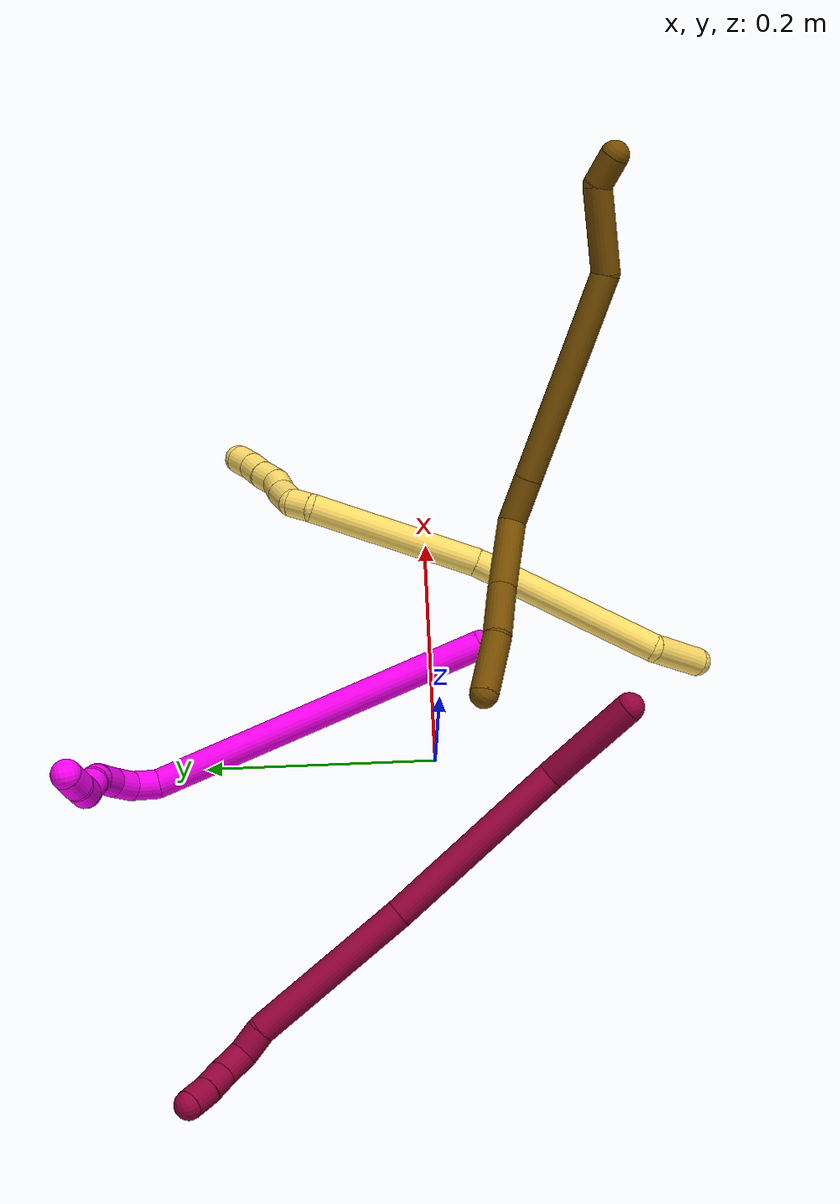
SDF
<sdf version="1.7">
 <world name="default">
  <model name="5">
   <static>0</static>
   <link name="5">
    <collision name="collision-cylinder-e_1_1_4">
     <pose>-0.005964 0.023579 0.009303 -1.19502 -0.2311 0.157636</pose>
     <geometry><cylinder><radius>0.0125</radius><length>0.05208</length></cylinder></geometry>
     <surface>
      <friction><ode><mu>1.16</mu><mu2>1.16</mu2><slip1>0</slip1><slip2>0</slip2></ode></friction>
      <contact><ode><kp>1e+06</kp><kd>1</kd><max_vel>0</max_vel><min_depth>0.001</min_depth></ode></contact>
     </surface>
    </collision>
    <visual name="visual-cylinder-e_1_1_4">
     <pose>-0.005964 0.023579 0.009303 -1.19502 -0.2311 0.157636</pose>
     <geometry><cylinder><radius>0.0125</radius><length>0.05208</length></cylinder></geometry>
     <material><ambient>1 0.858824 0.4 1</ambient></material>
    </visual>
    <collision name="collision-cylinder-e_2_4_5">
     <pose>0.020389 0.113975 0.060931 -1.00614 0.387894 -0.215337</pose>
     <geometry><cylinder><radius>0.0125</radius><length>0.170884</length></cylinder></geometry>
     <surface>
      <friction><ode><mu>1.16</mu><mu2>1.16</mu2><slip1>0</slip1><slip2>0</slip2></ode></friction>
      <contact><ode><kp>1e+06</kp><kd>1</kd><max_vel>0</max_vel><min_depth>0.001</min_depth></ode></contact>
     </surface>
    </collision>
    <visual name="visual-cylinder-e_2_4_5">
     <pose>0.020389 0.113975 0.060931 -1.00614 0.387894 -0.215337</pose>
     <geometry><cylinder><radius>0.0125</radius><length>0.170884</length></cylinder></geometry>
     <material><ambient>1 0.858824 0.4 1</ambient></material>
    </visual>
    <collision name="collision-cylinder-e_3_5_6">
     <pose>0.072057 0.247479 0.132364 -1.15925 0.259922 -0.170703</pose>
     <geometry><cylinder><radius>0.0125</radius><length>0.150585</length></cylinder></geometry>
     <surface>
      <friction><ode><mu>1.16</mu><mu2>1.16</mu2><slip1>0</slip1><slip2>0</slip2></ode></friction>
      <contact><ode><kp>1e+06</kp><kd>1</kd><max_vel>0</max_vel><min_depth>0.001</min_depth></ode></contact>
     </surface>
    </collision>
    <visual name="visual-cylinder-e_3_5_6">
     <pose>0.072057 0.247479 0.132364 -1.15925 0.259922 -0.170703</pose>
     <geometry><cylinder><radius>0.0125</radius><length>0.150585</length></cylinder></geometry>
     <material><ambient>1 0.858824 0.4 1</ambient></material>
    </visual>
    <collision name="collision-cylinder-e_4_6_7">
     <pose>0.098723 0.320554 0.164135 -1.17559 0.813147 -0.558817</pose>
     <geometry><cylinder><radius>0.0125</radius><length>0.020139</length></cylinder></geometry>
     <surface>
      <friction><ode><mu>1.16</mu><mu2>1.16</mu2><slip1>0</slip1><slip2>0</slip2></ode></friction>
      <contact><ode><kp>1e+06</kp><kd>1</kd><max_vel>0</max_vel><min_depth>0.001</min_depth></ode></contact>
     </surface>
    </collision>
    <visual name="visual-cylinder-e_4_6_7">
     <pose>0.098723 0.320554 0.164135 -1.17559 0.813147 -0.558817</pose>
     <geometry><cylinder><radius>0.0125</radius><length>0.020139</length></cylinder></geometry>
     <material><ambient>1 0.858824 0.4 1</ambient></material>
    </visual>
    <collision name="collision-cylinder-e_5_7_8">
     <pose>0.11802 0.32747 0.170783 -0.132 1.24721 -0.095023</pose>
     <geometry><cylinder><radius>0.0125</radius><length>0.025277</length></cylinder></geometry>
     <surface>
      <friction><ode><mu>1.16</mu><mu2>1.16</mu2><slip1>0</slip1><slip2>0</slip2></ode></friction>
      <contact><ode><kp>1e+06</kp><kd>1</kd><max_vel>0</max_vel><min_depth>0.001</min_depth></ode></contact>
     </surface>
    </collision>
    <visual name="visual-cylinder-e_5_7_8">
     <pose>0.11802 0.32747 0.170783 -0.132 1.24721 -0.095023</pose>
     <geometry><cylinder><radius>0.0125</radius><length>0.025277</length></cylinder></geometry>
     <material><ambient>1 0.858824 0.4 1</ambient></material>
    </visual>
    <collision name="collision-cylinder-e_6_8_9">
     <pose>0.139399 0.327428 0.179264 0.12614 1.12128 0.079259</pose>
     <geometry><cylinder><radius>0.0125</radius><length>0.020866</length></cylinder></geometry>
     <surface>
      <friction><ode><mu>1.16</mu><mu2>1.16</mu2><slip1>0</slip1><slip2>0</slip2></ode></friction>
      <contact><ode><kp>1e+06</kp><kd>1</kd><max_vel>0</max_vel><min_depth>0.001</min_depth></ode></contact>
     </surface>
    </collision>
    <visual name="visual-cylinder-e_6_8_9">
     <pose>0.139399 0.327428 0.179264 0.12614 1.12128 0.079259</pose>
     <geometry><cylinder><radius>0.0125</radius><length>0.020866</length></cylinder></geometry>
     <material><ambient>1 0.858824 0.4 1</ambient></material>
    </visual>
    <collision name="collision-cylinder-e_7_9_10">
     <pose>0.157619 0.330168 0.187325 -0.748646 1.06701 -0.455987</pose>
     <geometry><cylinder><radius>0.0125</radius><length>0.02015</length></cylinder></geometry>
     <surface>
      <friction><ode><mu>1.16</mu><mu2>1.16</mu2><slip1>0</slip1><slip2>0</slip2></ode></friction>
      <contact><ode><kp>1e+06</kp><kd>1</kd><max_vel>0</max_vel><min_depth>0.001</min_depth></ode></contact>
     </surface>
    </collision>
    <visual name="visual-cylinder-e_7_9_10">
     <pose>0.157619 0.330168 0.187325 -0.748646 1.06701 -0.455987</pose>
     <geometry><cylinder><radius>0.0125</radius><length>0.02015</length></cylinder></geometry>
     <material><ambient>1 0.858824 0.4 1</ambient></material>
    </visual>
    <collision name="collision-cylinder-e_8_10_11">
     <pose>0.175419 0.335471 0.194818 -0.469245 1.11447 -0.295702</pose>
     <geometry><cylinder><radius>0.0125</radius><length>0.02</length></cylinder></geometry>
     <surface>
      <friction><ode><mu>1.16</mu><mu2>1.16</mu2><slip1>0</slip1><slip2>0</slip2></ode></friction>
      <contact><ode><kp>1e+06</kp><kd>1</kd><max_vel>0</max_vel><min_depth>0.001</min_depth></ode></contact>
     </surface>
    </collision>
    <visual name="visual-cylinder-e_8_10_11">
     <pose>0.175419 0.335471 0.194818 -0.469245 1.11447 -0.295702</pose>
     <geometry><cylinder><radius>0.0125</radius><length>0.02</length></cylinder></geometry>
     <material><ambient>1 0.858824 0.4 1</ambient></material>
    </visual>
    <collision name="collision-cylinder-e_9_11_2">
     <pose>0.193292 0.340601 0.202095 -0.75318 1.09475 -0.47305</pose>
     <geometry><cylinder><radius>0.0125</radius><length>0.020019</length></cylinder></geometry>
     <surface>
      <friction><ode><mu>1.16</mu><mu2>1.16</mu2><slip1>0</slip1><slip2>0</slip2></ode></friction>
      <contact><ode><kp>1e+06</kp><kd>1</kd><max_vel>0</max_vel><min_depth>0.001</min_depth></ode></contact>
     </surface>
    </collision>
    <visual name="visual-cylinder-e_9_11_2">
     <pose>0.193292 0.340601 0.202095 -0.75318 1.09475 -0.47305</pose>
     <geometry><cylinder><radius>0.0125</radius><length>0.020019</length></cylinder></geometry>
     <material><ambient>1 0.858824 0.4 1</ambient></material>
    </visual>
    <collision name="collision-sphere-2">
     <pose>0.202189 0.343739 0.205441 0 -0 0</pose>
     <geometry><sphere><radius>0.0125</radius></sphere></geometry>
     <surface>
      <friction><ode><mu>1.16</mu><mu2>1.16</mu2><slip1>0</slip1><slip2>0</slip2></ode></friction>
      <contact><ode><kp>1e+06</kp><kd>1</kd><max_vel>0</max_vel><min_depth>0.001</min_depth></ode></contact>
     </surface>
    </collision>
    <visual name="visual-sphere-2">
     <pose>0.202189 0.343739 0.205441 0 -0 0</pose>
     <geometry><sphere><radius>0.0125</radius></sphere></geometry>
     <material><ambient>1 0.858824 0.4 1</ambient></material>
    </visual>
    <collision name="collision-sphere-11">
     <pose>0.184396 0.337464 0.198748 0 -0 0</pose>
     <geometry><sphere><radius>0.0125</radius></sphere></geometry>
     <surface>
      <friction><ode><mu>1.16</mu><mu2>1.16</mu2><slip1>0</slip1><slip2>0</slip2></ode></friction>
      <contact><ode><kp>1e+06</kp><kd>1</kd><max_vel>0</max_vel><min_depth>0.001</min_depth></ode></contact>
     </surface>
    </collision>
    <visual name="visual-sphere-11">
     <pose>0.184396 0.337464 0.198748 0 -0 0</pose>
     <geometry><sphere><radius>0.0125</radius></sphere></geometry>
     <material><ambient>1 0.858824 0.4 1</ambient></material>
    </visual>
    <collision name="collision-sphere-10">
     <pose>0.166442 0.333479 0.190888 0 -0 0</pose>
     <geometry><sphere><radius>0.0125</radius></sphere></geometry>
     <surface>
      <friction><ode><mu>1.16</mu><mu2>1.16</mu2><slip1>0</slip1><slip2>0</slip2></ode></friction>
      <contact><ode><kp>1e+06</kp><kd>1</kd><max_vel>0</max_vel><min_depth>0.001</min_depth></ode></contact>
     </surface>
    </collision>
    <visual name="visual-sphere-10">
     <pose>0.166442 0.333479 0.190888 0 -0 0</pose>
     <geometry><sphere><radius>0.0125</radius></sphere></geometry>
     <material><ambient>1 0.858824 0.4 1</ambient></material>
    </visual>
    <collision name="collision-sphere-9">
     <pose>0.148796 0.326858 0.183762 0 -0 0</pose>
     <geometry><sphere><radius>0.0125</radius></sphere></geometry>
     <surface>
      <friction><ode><mu>1.16</mu><mu2>1.16</mu2><slip1>0</slip1><slip2>0</slip2></ode></friction>
      <contact><ode><kp>1e+06</kp><kd>1</kd><max_vel>0</max_vel><min_depth>0.001</min_depth></ode></contact>
     </surface>
    </collision>
    <visual name="visual-sphere-9">
     <pose>0.148796 0.326858 0.183762 0 -0 0</pose>
     <geometry><sphere><radius>0.0125</radius></sphere></geometry>
     <material><ambient>1 0.858824 0.4 1</ambient></material>
    </visual>
    <collision name="collision-sphere-4">
     <pose>-0.011929 0.047158 0.018605 0 -0 0</pose>
     <geometry><sphere><radius>0.0125</radius></sphere></geometry>
     <surface>
      <friction><ode><mu>1.16</mu><mu2>1.16</mu2><slip1>0</slip1><slip2>0</slip2></ode></friction>
      <contact><ode><kp>1e+06</kp><kd>1</kd><max_vel>0</max_vel><min_depth>0.001</min_depth></ode></contact>
     </surface>
    </collision>
    <visual name="visual-sphere-4">
     <pose>-0.011929 0.047158 0.018605 0 -0 0</pose>
     <geometry><sphere><radius>0.0125</radius></sphere></geometry>
     <material><ambient>1 0.858824 0.4 1</ambient></material>
    </visual>
    <collision name="collision-sphere-1">
     <geometry><sphere><radius>0.0125</radius></sphere></geometry>
     <surface>
      <friction><ode><mu>1.16</mu><mu2>1.16</mu2><slip1>0</slip1><slip2>0</slip2></ode></friction>
      <contact><ode><kp>1e+06</kp><kd>1</kd><max_vel>0</max_vel><min_depth>0.001</min_depth></ode></contact>
     </surface>
    </collision>
    <visual name="visual-sphere-1">
     <geometry><sphere><radius>0.0125</radius></sphere></geometry>
     <material><ambient>1 0.858824 0.4 1</ambient></material>
    </visual>
    <collision name="collision-sphere-8">
     <pose>0.130003 0.327998 0.174767 0 -0 0</pose>
     <geometry><sphere><radius>0.0125</radius></sphere></geometry>
     <surface>
      <friction><ode><mu>1.16</mu><mu2>1.16</mu2><slip1>0</slip1><slip2>0</slip2></ode></friction>
      <contact><ode><kp>1e+06</kp><kd>1</kd><max_vel>0</max_vel><min_depth>0.001</min_depth></ode></contact>
     </surface>
    </collision>
    <visual name="visual-sphere-8">
     <pose>0.130003 0.327998 0.174767 0 -0 0</pose>
     <geometry><sphere><radius>0.0125</radius></sphere></geometry>
     <material><ambient>1 0.858824 0.4 1</ambient></material>
    </visual>
    <collision name="collision-sphere-5">
     <pose>0.052706 0.180791 0.103257 0 -0 0</pose>
     <geometry><sphere><radius>0.0125</radius></sphere></geometry>
     <surface>
      <friction><ode><mu>1.16</mu><mu2>1.16</mu2><slip1>0</slip1><slip2>0</slip2></ode></friction>
      <contact><ode><kp>1e+06</kp><kd>1</kd><max_vel>0</max_vel><min_depth>0.001</min_depth></ode></contact>
     </surface>
    </collision>
    <visual name="visual-sphere-5">
     <pose>0.052706 0.180791 0.103257 0 -0 0</pose>
     <geometry><sphere><radius>0.0125</radius></sphere></geometry>
     <material><ambient>1 0.858824 0.4 1</ambient></material>
    </visual>
    <collision name="collision-sphere-6">
     <pose>0.091408 0.314167 0.161471 0 -0 0</pose>
     <geometry><sphere><radius>0.0125</radius></sphere></geometry>
     <surface>
      <friction><ode><mu>1.16</mu><mu2>1.16</mu2><slip1>0</slip1><slip2>0</slip2></ode></friction>
      <contact><ode><kp>1e+06</kp><kd>1</kd><max_vel>0</max_vel><min_depth>0.001</min_depth></ode></contact>
     </surface>
    </collision>
    <visual name="visual-sphere-6">
     <pose>0.091408 0.314167 0.161471 0 -0 0</pose>
     <geometry><sphere><radius>0.0125</radius></sphere></geometry>
     <material><ambient>1 0.858824 0.4 1</ambient></material>
    </visual>
    <collision name="collision-sphere-7">
     <pose>0.106038 0.326941 0.1668 0 -0 0</pose>
     <geometry><sphere><radius>0.0125</radius></sphere></geometry>
     <surface>
      <friction><ode><mu>1.16</mu><mu2>1.16</mu2><slip1>0</slip1><slip2>0</slip2></ode></friction>
      <contact><ode><kp>1e+06</kp><kd>1</kd><max_vel>0</max_vel><min_depth>0.001</min_depth></ode></contact>
     </surface>
    </collision>
    <visual name="visual-sphere-7">
     <pose>0.106038 0.326941 0.1668 0 -0 0</pose>
     <geometry><sphere><radius>0.0125</radius></sphere></geometry>
     <material><ambient>1 0.858824 0.4 1</ambient></material>
    </visual>
    <inertial>
     <pose>0.064916 0.199434 0.107816 0 -0 0</pose>
     <mass>0.5</mass>
     <inertia>
      <ixx>0.000561</ixx>
      <ixy>0</ixy>
      <ixz>0</ixz>
      <iyy>0.000287</iyy>
      <iyz>0</iyz>
      <izz>-0.000826</izz>
     </inertia>
    </inertial>
   </link>
   <pose>0.076941 -0.233445 0.012465 0.609426 1.03923 0.719635</pose>
  </model>
  <model name="8">
   <static>0</static>
   <link name="8">
    <collision name="collision-cylinder-e_1_1_4">
     <pose>0.005446 0.032012 0.030782 -0.804973 0.122024 -0.052002</pose>
     <geometry><cylinder><radius>0.0125</radius><length>0.089486</length></cylinder></geometry>
     <surface>
      <friction><ode><mu>1.16</mu><mu2>1.16</mu2><slip1>0</slip1><slip2>0</slip2></ode></friction>
      <contact><ode><kp>1e+06</kp><kd>1</kd><max_vel>0</max_vel><min_depth>0.001</min_depth></ode></contact>
     </surface>
    </collision>
    <visual name="visual-cylinder-e_1_1_4">
     <pose>0.005446 0.032012 0.030782 -0.804973 0.122024 -0.052002</pose>
     <geometry><cylinder><radius>0.0125</radius><length>0.089486</length></cylinder></geometry>
     <material><ambient>0.584314 0 0.227451 1</ambient></material>
    </visual>
    <collision name="collision-cylinder-e_2_4_5">
     <pose>0.001998 0.103329 0.135862 -0.486596 -0.105426 0.026191</pose>
     <geometry><cylinder><radius>0.0125</radius><length>0.169047</length></cylinder></geometry>
     <surface>
      <friction><ode><mu>1.16</mu><mu2>1.16</mu2><slip1>0</slip1><slip2>0</slip2></ode></friction>
      <contact><ode><kp>1e+06</kp><kd>1</kd><max_vel>0</max_vel><min_depth>0.001</min_depth></ode></contact>
     </surface>
    </collision>
    <visual name="visual-cylinder-e_2_4_5">
     <pose>0.001998 0.103329 0.135862 -0.486596 -0.105426 0.026191</pose>
     <geometry><cylinder><radius>0.0125</radius><length>0.169047</length></cylinder></geometry>
     <material><ambient>0.584314 0 0.227451 1</ambient></material>
    </visual>
    <collision name="collision-cylinder-e_3_5_6">
     <pose>-0.012695 0.17513 0.276071 -0.458053 -0.07874 0.018365</pose>
     <geometry><cylinder><radius>0.0125</radius><length>0.147429</length></cylinder></geometry>
     <surface>
      <friction><ode><mu>1.16</mu><mu2>1.16</mu2><slip1>0</slip1><slip2>0</slip2></ode></friction>
      <contact><ode><kp>1e+06</kp><kd>1</kd><max_vel>0</max_vel><min_depth>0.001</min_depth></ode></contact>
     </surface>
    </collision>
    <visual name="visual-cylinder-e_3_5_6">
     <pose>-0.012695 0.17513 0.276071 -0.458053 -0.07874 0.018365</pose>
     <geometry><cylinder><radius>0.0125</radius><length>0.147429</length></cylinder></geometry>
     <material><ambient>0.584314 0 0.227451 1</ambient></material>
    </visual>
    <collision name="collision-cylinder-e_4_6_7">
     <pose>-0.021505 0.21457 0.351719 -0.619565 -0.246727 0.079336</pose>
     <geometry><cylinder><radius>0.0125</radius><length>0.024667</length></cylinder></geometry>
     <surface>
      <friction><ode><mu>1.16</mu><mu2>1.16</mu2><slip1>0</slip1><slip2>0</slip2></ode></friction>
      <contact><ode><kp>1e+06</kp><kd>1</kd><max_vel>0</max_vel><min_depth>0.001</min_depth></ode></contact>
     </surface>
    </collision>
    <visual name="visual-cylinder-e_4_6_7">
     <pose>-0.021505 0.21457 0.351719 -0.619565 -0.246727 0.079336</pose>
     <geometry><cylinder><radius>0.0125</radius><length>0.024667</length></cylinder></geometry>
     <material><ambient>0.584314 0 0.227451 1</ambient></material>
    </visual>
    <collision name="collision-cylinder-e_5_7_8">
     <pose>-0.030609 0.219581 0.373666 0.157077 -0.457864 -0.036673</pose>
     <geometry><cylinder><radius>0.0125</radius><length>0.027564</length></cylinder></geometry>
     <surface>
      <friction><ode><mu>1.16</mu><mu2>1.16</mu2><slip1>0</slip1><slip2>0</slip2></ode></friction>
      <contact><ode><kp>1e+06</kp><kd>1</kd><max_vel>0</max_vel><min_depth>0.001</min_depth></ode></contact>
     </surface>
    </collision>
    <visual name="visual-cylinder-e_5_7_8">
     <pose>-0.030609 0.219581 0.373666 0.157077 -0.457864 -0.036673</pose>
     <geometry><cylinder><radius>0.0125</radius><length>0.027564</length></cylinder></geometry>
     <material><ambient>0.584314 0 0.227451 1</ambient></material>
    </visual>
    <collision name="collision-cylinder-e_6_8_9">
     <pose>-0.041909 0.215799 0.394481 0.211577 -0.534228 -0.058099</pose>
     <geometry><cylinder><radius>0.0125</radius><length>0.020454</length></cylinder></geometry>
     <surface>
      <friction><ode><mu>1.16</mu><mu2>1.16</mu2><slip1>0</slip1><slip2>0</slip2></ode></friction>
      <contact><ode><kp>1e+06</kp><kd>1</kd><max_vel>0</max_vel><min_depth>0.001</min_depth></ode></contact>
     </surface>
    </collision>
    <visual name="visual-cylinder-e_6_8_9">
     <pose>-0.041909 0.215799 0.394481 0.211577 -0.534228 -0.058099</pose>
     <geometry><cylinder><radius>0.0125</radius><length>0.020454</length></cylinder></geometry>
     <material><ambient>0.584314 0 0.227451 1</ambient></material>
    </visual>
    <collision name="collision-cylinder-e_7_9_2">
     <pose>-0.051325 0.211679 0.412633 0.233645 -0.405236 -0.048209</pose>
     <geometry><cylinder><radius>0.0125</radius><length>0.021354</length></cylinder></geometry>
     <surface>
      <friction><ode><mu>1.16</mu><mu2>1.16</mu2><slip1>0</slip1><slip2>0</slip2></ode></friction>
      <contact><ode><kp>1e+06</kp><kd>1</kd><max_vel>0</max_vel><min_depth>0.001</min_depth></ode></contact>
     </surface>
    </collision>
    <visual name="visual-cylinder-e_7_9_2">
     <pose>-0.051325 0.211679 0.412633 0.233645 -0.405236 -0.048209</pose>
     <geometry><cylinder><radius>0.0125</radius><length>0.021354</length></cylinder></geometry>
     <material><ambient>0.584314 0 0.227451 1</ambient></material>
    </visual>
    <collision name="collision-sphere-2">
     <pose>-0.055534 0.209407 0.422178 0 -0 0</pose>
     <geometry><sphere><radius>0.0125</radius></sphere></geometry>
     <surface>
      <friction><ode><mu>1.16</mu><mu2>1.16</mu2><slip1>0</slip1><slip2>0</slip2></ode></friction>
      <contact><ode><kp>1e+06</kp><kd>1</kd><max_vel>0</max_vel><min_depth>0.001</min_depth></ode></contact>
     </surface>
    </collision>
    <visual name="visual-sphere-2">
     <pose>-0.055534 0.209407 0.422178 0 -0 0</pose>
     <geometry><sphere><radius>0.0125</radius></sphere></geometry>
     <material><ambient>0.584314 0 0.227451 1</ambient></material>
    </visual>
    <collision name="collision-sphere-9">
     <pose>-0.047116 0.213951 0.403087 0 -0 0</pose>
     <geometry><sphere><radius>0.0125</radius></sphere></geometry>
     <surface>
      <friction><ode><mu>1.16</mu><mu2>1.16</mu2><slip1>0</slip1><slip2>0</slip2></ode></friction>
      <contact><ode><kp>1e+06</kp><kd>1</kd><max_vel>0</max_vel><min_depth>0.001</min_depth></ode></contact>
     </surface>
    </collision>
    <visual name="visual-sphere-9">
     <pose>-0.047116 0.213951 0.403087 0 -0 0</pose>
     <geometry><sphere><radius>0.0125</radius></sphere></geometry>
     <material><ambient>0.584314 0 0.227451 1</ambient></material>
    </visual>
    <collision name="collision-sphere-4">
     <pose>0.010892 0.064023 0.061565 0 -0 0</pose>
     <geometry><sphere><radius>0.0125</radius></sphere></geometry>
     <surface>
      <friction><ode><mu>1.16</mu><mu2>1.16</mu2><slip1>0</slip1><slip2>0</slip2></ode></friction>
      <contact><ode><kp>1e+06</kp><kd>1</kd><max_vel>0</max_vel><min_depth>0.001</min_depth></ode></contact>
     </surface>
    </collision>
    <visual name="visual-sphere-4">
     <pose>0.010892 0.064023 0.061565 0 -0 0</pose>
     <geometry><sphere><radius>0.0125</radius></sphere></geometry>
     <material><ambient>0.584314 0 0.227451 1</ambient></material>
    </visual>
    <collision name="collision-sphere-1">
     <geometry><sphere><radius>0.0125</radius></sphere></geometry>
     <surface>
      <friction><ode><mu>1.16</mu><mu2>1.16</mu2><slip1>0</slip1><slip2>0</slip2></ode></friction>
      <contact><ode><kp>1e+06</kp><kd>1</kd><max_vel>0</max_vel><min_depth>0.001</min_depth></ode></contact>
     </surface>
    </collision>
    <visual name="visual-sphere-1">
     <geometry><sphere><radius>0.0125</radius></sphere></geometry>
     <material><ambient>0.584314 0 0.227451 1</ambient></material>
    </visual>
    <collision name="collision-sphere-8">
     <pose>-0.036701 0.217647 0.385876 0 -0 0</pose>
     <geometry><sphere><radius>0.0125</radius></sphere></geometry>
     <surface>
      <friction><ode><mu>1.16</mu><mu2>1.16</mu2><slip1>0</slip1><slip2>0</slip2></ode></friction>
      <contact><ode><kp>1e+06</kp><kd>1</kd><max_vel>0</max_vel><min_depth>0.001</min_depth></ode></contact>
     </surface>
    </collision>
    <visual name="visual-sphere-8">
     <pose>-0.036701 0.217647 0.385876 0 -0 0</pose>
     <geometry><sphere><radius>0.0125</radius></sphere></geometry>
     <material><ambient>0.584314 0 0.227451 1</ambient></material>
    </visual>
    <collision name="collision-sphere-5">
     <pose>-0.006896 0.142634 0.21016 0 -0 0</pose>
     <geometry><sphere><radius>0.0125</radius></sphere></geometry>
     <surface>
      <friction><ode><mu>1.16</mu><mu2>1.16</mu2><slip1>0</slip1><slip2>0</slip2></ode></friction>
      <contact><ode><kp>1e+06</kp><kd>1</kd><max_vel>0</max_vel><min_depth>0.001</min_depth></ode></contact>
     </surface>
    </collision>
    <visual name="visual-sphere-5">
     <pose>-0.006896 0.142634 0.21016 0 -0 0</pose>
     <geometry><sphere><radius>0.0125</radius></sphere></geometry>
     <material><ambient>0.584314 0 0.227451 1</ambient></material>
    </visual>
    <collision name="collision-sphere-6">
     <pose>-0.018493 0.207625 0.341982 0 -0 0</pose>
     <geometry><sphere><radius>0.0125</radius></sphere></geometry>
     <surface>
      <friction><ode><mu>1.16</mu><mu2>1.16</mu2><slip1>0</slip1><slip2>0</slip2></ode></friction>
      <contact><ode><kp>1e+06</kp><kd>1</kd><max_vel>0</max_vel><min_depth>0.001</min_depth></ode></contact>
     </surface>
    </collision>
    <visual name="visual-sphere-6">
     <pose>-0.018493 0.207625 0.341982 0 -0 0</pose>
     <geometry><sphere><radius>0.0125</radius></sphere></geometry>
     <material><ambient>0.584314 0 0.227451 1</ambient></material>
    </visual>
    <collision name="collision-sphere-7">
     <pose>-0.024517 0.221515 0.361456 0 -0 0</pose>
     <geometry><sphere><radius>0.0125</radius></sphere></geometry>
     <surface>
      <friction><ode><mu>1.16</mu><mu2>1.16</mu2><slip1>0</slip1><slip2>0</slip2></ode></friction>
      <contact><ode><kp>1e+06</kp><kd>1</kd><max_vel>0</max_vel><min_depth>0.001</min_depth></ode></contact>
     </surface>
    </collision>
    <visual name="visual-sphere-7">
     <pose>-0.024517 0.221515 0.361456 0 -0 0</pose>
     <geometry><sphere><radius>0.0125</radius></sphere></geometry>
     <material><ambient>0.584314 0 0.227451 1</ambient></material>
    </visual>
    <inertial>
     <pose>-0.008748 0.132861 0.204556 0 -0 0</pose>
     <mass>0.5</mass>
     <inertia>
      <ixx>0.000757</ixx>
      <ixy>0</ixy>
      <ixz>0</ixz>
      <iyy>0.000687</iyy>
      <iyz>0</iyz>
      <izz>-0.000263</izz>
     </inertia>
    </inertial>
   </link>
   <pose>0.001599 -0.155235 0.141302 -1.31818 0.395769 0.484826</pose>
  </model>
  <model name="10">
   <static>0</static>
   <link name="10">
    <collision name="collision-cylinder-e_1_1_4">
     <pose>0.010396 0.03396 0.145224 -0.229718 0.06959 -0.008032</pose>
     <geometry><cylinder><radius>0.0125</radius><length>0.299007</length></cylinder></geometry>
     <surface>
      <friction><ode><mu>1.16</mu><mu2>1.16</mu2><slip1>0</slip1><slip2>0</slip2></ode></friction>
      <contact><ode><kp>1e+06</kp><kd>1</kd><max_vel>0</max_vel><min_depth>0.001</min_depth></ode></contact>
     </surface>
    </collision>
    <visual name="visual-cylinder-e_1_1_4">
     <pose>0.010396 0.03396 0.145224 -0.229718 0.06959 -0.008032</pose>
     <geometry><cylinder><radius>0.0125</radius><length>0.299007</length></cylinder></geometry>
     <material><ambient>1 0 0.964706 1</ambient></material>
    </visual>
    <collision name="collision-cylinder-e_2_4_5">
     <pose>0.015013 0.06559 0.301041 0.216465 -0.489436 -0.054255</pose>
     <geometry><cylinder><radius>0.0125</radius><length>0.02458</length></cylinder></geometry>
     <surface>
      <friction><ode><mu>1.16</mu><mu2>1.16</mu2><slip1>0</slip1><slip2>0</slip2></ode></friction>
      <contact><ode><kp>1e+06</kp><kd>1</kd><max_vel>0</max_vel><min_depth>0.001</min_depth></ode></contact>
     </surface>
    </collision>
    <visual name="visual-cylinder-e_2_4_5">
     <pose>0.015013 0.06559 0.301041 0.216465 -0.489436 -0.054255</pose>
     <geometry><cylinder><radius>0.0125</radius><length>0.02458</length></cylinder></geometry>
     <material><ambient>1 0 0.964706 1</ambient></material>
    </visual>
    <collision name="collision-cylinder-e_3_5_6">
     <pose>0.001805 0.058851 0.318588 0.565233 -0.734224 -0.222414</pose>
     <geometry><cylinder><radius>0.0125</radius><length>0.022181</length></cylinder></geometry>
     <surface>
      <friction><ode><mu>1.16</mu><mu2>1.16</mu2><slip1>0</slip1><slip2>0</slip2></ode></friction>
      <contact><ode><kp>1e+06</kp><kd>1</kd><max_vel>0</max_vel><min_depth>0.001</min_depth></ode></contact>
     </surface>
    </collision>
    <visual name="visual-cylinder-e_3_5_6">
     <pose>0.001805 0.058851 0.318588 0.565233 -0.734224 -0.222414</pose>
     <geometry><cylinder><radius>0.0125</radius><length>0.022181</length></cylinder></geometry>
     <material><ambient>1 0 0.964706 1</ambient></material>
    </visual>
    <collision name="collision-cylinder-e_4_6_7">
     <pose>-0.016861 0.049775 0.33015 0.791437 -1.04238 -0.470807</pose>
     <geometry><cylinder><radius>0.0125</radius><length>0.026019</length></cylinder></geometry>
     <surface>
      <friction><ode><mu>1.16</mu><mu2>1.16</mu2><slip1>0</slip1><slip2>0</slip2></ode></friction>
      <contact><ode><kp>1e+06</kp><kd>1</kd><max_vel>0</max_vel><min_depth>0.001</min_depth></ode></contact>
     </surface>
    </collision>
    <visual name="visual-cylinder-e_4_6_7">
     <pose>-0.016861 0.049775 0.33015 0.791437 -1.04238 -0.470807</pose>
     <geometry><cylinder><radius>0.0125</radius><length>0.026019</length></cylinder></geometry>
     <material><ambient>1 0 0.964706 1</ambient></material>
    </visual>
    <collision name="collision-cylinder-e_5_7_8">
     <pose>-0.041134 0.046166 0.338165 -0.300834 -1.30385 0.230334</pose>
     <geometry><cylinder><radius>0.0125</radius><length>0.027033</length></cylinder></geometry>
     <surface>
      <friction><ode><mu>1.16</mu><mu2>1.16</mu2><slip1>0</slip1><slip2>0</slip2></ode></friction>
      <contact><ode><kp>1e+06</kp><kd>1</kd><max_vel>0</max_vel><min_depth>0.001</min_depth></ode></contact>
     </surface>
    </collision>
    <visual name="visual-cylinder-e_5_7_8">
     <pose>-0.041134 0.046166 0.338165 -0.300834 -1.30385 0.230334</pose>
     <geometry><cylinder><radius>0.0125</radius><length>0.027033</length></cylinder></geometry>
     <material><ambient>1 0 0.964706 1</ambient></material>
    </visual>
    <collision name="collision-cylinder-e_6_8_9">
     <pose>-0.063758 0.04459 0.3404 1.98915 -1.2788 -1.70527</pose>
     <geometry><cylinder><radius>0.0125</radius><length>0.02002</length></cylinder></geometry>
     <surface>
      <friction><ode><mu>1.16</mu><mu2>1.16</mu2><slip1>0</slip1><slip2>0</slip2></ode></friction>
      <contact><ode><kp>1e+06</kp><kd>1</kd><max_vel>0</max_vel><min_depth>0.001</min_depth></ode></contact>
     </surface>
    </collision>
    <visual name="visual-cylinder-e_6_8_9">
     <pose>-0.063758 0.04459 0.3404 1.98915 -1.2788 -1.70527</pose>
     <geometry><cylinder><radius>0.0125</radius><length>0.02002</length></cylinder></geometry>
     <material><ambient>1 0 0.964706 1</ambient></material>
    </visual>
    <collision name="collision-cylinder-e_7_9_10">
     <pose>-0.082843 0.039529 0.336608 2.3946 -1.211 -2.11132</pose>
     <geometry><cylinder><radius>0.0125</radius><length>0.020296</length></cylinder></geometry>
     <surface>
      <friction><ode><mu>1.16</mu><mu2>1.16</mu2><slip1>0</slip1><slip2>0</slip2></ode></friction>
      <contact><ode><kp>1e+06</kp><kd>1</kd><max_vel>0</max_vel><min_depth>0.001</min_depth></ode></contact>
     </surface>
    </collision>
    <visual name="visual-cylinder-e_7_9_10">
     <pose>-0.082843 0.039529 0.336608 2.3946 -1.211 -2.11132</pose>
     <geometry><cylinder><radius>0.0125</radius><length>0.020296</length></cylinder></geometry>
     <material><ambient>1 0 0.964706 1</ambient></material>
    </visual>
    <collision name="collision-cylinder-e_8_10_11">
     <pose>-0.101761 0.039415 0.336612 -0.722371 -1.21511 0.513695</pose>
     <geometry><cylinder><radius>0.0125</radius><length>0.020098</length></cylinder></geometry>
     <surface>
      <friction><ode><mu>1.16</mu><mu2>1.16</mu2><slip1>0</slip1><slip2>0</slip2></ode></friction>
      <contact><ode><kp>1e+06</kp><kd>1</kd><max_vel>0</max_vel><min_depth>0.001</min_depth></ode></contact>
     </surface>
    </collision>
    <visual name="visual-cylinder-e_8_10_11">
     <pose>-0.101761 0.039415 0.336612 -0.722371 -1.21511 0.513695</pose>
     <geometry><cylinder><radius>0.0125</radius><length>0.020098</length></cylinder></geometry>
     <material><ambient>1 0 0.964706 1</ambient></material>
    </visual>
    <collision name="collision-cylinder-e_9_11_12">
     <pose>-0.120126 0.036952 0.340849 1.24529 -1.05757 -0.794348</pose>
     <geometry><cylinder><radius>0.0125</radius><length>0.020535</length></cylinder></geometry>
     <surface>
      <friction><ode><mu>1.16</mu><mu2>1.16</mu2><slip1>0</slip1><slip2>0</slip2></ode></friction>
      <contact><ode><kp>1e+06</kp><kd>1</kd><max_vel>0</max_vel><min_depth>0.001</min_depth></ode></contact>
     </surface>
    </collision>
    <visual name="visual-cylinder-e_9_11_12">
     <pose>-0.120126 0.036952 0.340849 1.24529 -1.05757 -0.794348</pose>
     <geometry><cylinder><radius>0.0125</radius><length>0.020535</length></cylinder></geometry>
     <material><ambient>1 0 0.964706 1</ambient></material>
    </visual>
    <collision name="collision-cylinder-e_10_12_2">
     <pose>-0.136392 0.025808 0.345318 1.14914 -0.809319 -0.540998</pose>
     <geometry><cylinder><radius>0.0125</radius><length>0.020231</length></cylinder></geometry>
     <surface>
      <friction><ode><mu>1.16</mu><mu2>1.16</mu2><slip1>0</slip1><slip2>0</slip2></ode></friction>
      <contact><ode><kp>1e+06</kp><kd>1</kd><max_vel>0</max_vel><min_depth>0.001</min_depth></ode></contact>
     </surface>
    </collision>
    <visual name="visual-cylinder-e_10_12_2">
     <pose>-0.136392 0.025808 0.345318 1.14914 -0.809319 -0.540998</pose>
     <geometry><cylinder><radius>0.0125</radius><length>0.020231</length></cylinder></geometry>
     <material><ambient>1 0 0.964706 1</ambient></material>
    </visual>
    <collision name="collision-sphere-2">
     <pose>-0.143714 0.019439 0.348174 0 -0 0</pose>
     <geometry><sphere><radius>0.0125</radius></sphere></geometry>
     <surface>
      <friction><ode><mu>1.16</mu><mu2>1.16</mu2><slip1>0</slip1><slip2>0</slip2></ode></friction>
      <contact><ode><kp>1e+06</kp><kd>1</kd><max_vel>0</max_vel><min_depth>0.001</min_depth></ode></contact>
     </surface>
    </collision>
    <visual name="visual-sphere-2">
     <pose>-0.143714 0.019439 0.348174 0 -0 0</pose>
     <geometry><sphere><radius>0.0125</radius></sphere></geometry>
     <material><ambient>1 0 0.964706 1</ambient></material>
    </visual>
    <collision name="collision-sphere-12">
     <pose>-0.129071 0.032176 0.342461 0 -0 0</pose>
     <geometry><sphere><radius>0.0125</radius></sphere></geometry>
     <surface>
      <friction><ode><mu>1.16</mu><mu2>1.16</mu2><slip1>0</slip1><slip2>0</slip2></ode></friction>
      <contact><ode><kp>1e+06</kp><kd>1</kd><max_vel>0</max_vel><min_depth>0.001</min_depth></ode></contact>
     </surface>
    </collision>
    <visual name="visual-sphere-12">
     <pose>-0.129071 0.032176 0.342461 0 -0 0</pose>
     <geometry><sphere><radius>0.0125</radius></sphere></geometry>
     <material><ambient>1 0 0.964706 1</ambient></material>
    </visual>
    <collision name="collision-sphere-11">
     <pose>-0.111181 0.041729 0.339237 0 -0 0</pose>
     <geometry><sphere><radius>0.0125</radius></sphere></geometry>
     <surface>
      <friction><ode><mu>1.16</mu><mu2>1.16</mu2><slip1>0</slip1><slip2>0</slip2></ode></friction>
      <contact><ode><kp>1e+06</kp><kd>1</kd><max_vel>0</max_vel><min_depth>0.001</min_depth></ode></contact>
     </surface>
    </collision>
    <visual name="visual-sphere-11">
     <pose>-0.111181 0.041729 0.339237 0 -0 0</pose>
     <geometry><sphere><radius>0.0125</radius></sphere></geometry>
     <material><ambient>1 0 0.964706 1</ambient></material>
    </visual>
    <collision name="collision-sphere-10">
     <pose>-0.092341 0.037101 0.333986 0 -0 0</pose>
     <geometry><sphere><radius>0.0125</radius></sphere></geometry>
     <surface>
      <friction><ode><mu>1.16</mu><mu2>1.16</mu2><slip1>0</slip1><slip2>0</slip2></ode></friction>
      <contact><ode><kp>1e+06</kp><kd>1</kd><max_vel>0</max_vel><min_depth>0.001</min_depth></ode></contact>
     </surface>
    </collision>
    <visual name="visual-sphere-10">
     <pose>-0.092341 0.037101 0.333986 0 -0 0</pose>
     <geometry><sphere><radius>0.0125</radius></sphere></geometry>
     <material><ambient>1 0 0.964706 1</ambient></material>
    </visual>
    <collision name="collision-sphere-9">
     <pose>-0.073345 0.041956 0.339229 0 -0 0</pose>
     <geometry><sphere><radius>0.0125</radius></sphere></geometry>
     <surface>
      <friction><ode><mu>1.16</mu><mu2>1.16</mu2><slip1>0</slip1><slip2>0</slip2></ode></friction>
      <contact><ode><kp>1e+06</kp><kd>1</kd><max_vel>0</max_vel><min_depth>0.001</min_depth></ode></contact>
     </surface>
    </collision>
    <visual name="visual-sphere-9">
     <pose>-0.073345 0.041956 0.339229 0 -0 0</pose>
     <geometry><sphere><radius>0.0125</radius></sphere></geometry>
     <material><ambient>1 0 0.964706 1</ambient></material>
    </visual>
    <collision name="collision-sphere-4">
     <pose>0.020791 0.06792 0.290447 0 -0 0</pose>
     <geometry><sphere><radius>0.0125</radius></sphere></geometry>
     <surface>
      <friction><ode><mu>1.16</mu><mu2>1.16</mu2><slip1>0</slip1><slip2>0</slip2></ode></friction>
      <contact><ode><kp>1e+06</kp><kd>1</kd><max_vel>0</max_vel><min_depth>0.001</min_depth></ode></contact>
     </surface>
    </collision>
    <visual name="visual-sphere-4">
     <pose>0.020791 0.06792 0.290447 0 -0 0</pose>
     <geometry><sphere><radius>0.0125</radius></sphere></geometry>
     <material><ambient>1 0 0.964706 1</ambient></material>
    </visual>
    <collision name="collision-sphere-1">
     <geometry><sphere><radius>0.0125</radius></sphere></geometry>
     <surface>
      <friction><ode><mu>1.16</mu><mu2>1.16</mu2><slip1>0</slip1><slip2>0</slip2></ode></friction>
      <contact><ode><kp>1e+06</kp><kd>1</kd><max_vel>0</max_vel><min_depth>0.001</min_depth></ode></contact>
     </surface>
    </collision>
    <visual name="visual-sphere-1">
     <geometry><sphere><radius>0.0125</radius></sphere></geometry>
     <material><ambient>1 0 0.964706 1</ambient></material>
    </visual>
    <collision name="collision-sphere-8">
     <pose>-0.054172 0.047223 0.341571 0 -0 0</pose>
     <geometry><sphere><radius>0.0125</radius></sphere></geometry>
     <surface>
      <friction><ode><mu>1.16</mu><mu2>1.16</mu2><slip1>0</slip1><slip2>0</slip2></ode></friction>
      <contact><ode><kp>1e+06</kp><kd>1</kd><max_vel>0</max_vel><min_depth>0.001</min_depth></ode></contact>
     </surface>
    </collision>
    <visual name="visual-sphere-8">
     <pose>-0.054172 0.047223 0.341571 0 -0 0</pose>
     <geometry><sphere><radius>0.0125</radius></sphere></geometry>
     <material><ambient>1 0 0.964706 1</ambient></material>
    </visual>
    <collision name="collision-sphere-5">
     <pose>0.009236 0.063261 0.311635 0 -0 0</pose>
     <geometry><sphere><radius>0.0125</radius></sphere></geometry>
     <surface>
      <friction><ode><mu>1.16</mu><mu2>1.16</mu2><slip1>0</slip1><slip2>0</slip2></ode></friction>
      <contact><ode><kp>1e+06</kp><kd>1</kd><max_vel>0</max_vel><min_depth>0.001</min_depth></ode></contact>
     </surface>
    </collision>
    <visual name="visual-sphere-5">
     <pose>0.009236 0.063261 0.311635 0 -0 0</pose>
     <geometry><sphere><radius>0.0125</radius></sphere></geometry>
     <material><ambient>1 0 0.964706 1</ambient></material>
    </visual>
    <collision name="collision-sphere-6">
     <pose>-0.005626 0.054441 0.32554 0 -0 0</pose>
     <geometry><sphere><radius>0.0125</radius></sphere></geometry>
     <surface>
      <friction><ode><mu>1.16</mu><mu2>1.16</mu2><slip1>0</slip1><slip2>0</slip2></ode></friction>
      <contact><ode><kp>1e+06</kp><kd>1</kd><max_vel>0</max_vel><min_depth>0.001</min_depth></ode></contact>
     </surface>
    </collision>
    <visual name="visual-sphere-6">
     <pose>-0.005626 0.054441 0.32554 0 -0 0</pose>
     <geometry><sphere><radius>0.0125</radius></sphere></geometry>
     <material><ambient>1 0 0.964706 1</ambient></material>
    </visual>
    <collision name="collision-sphere-7">
     <pose>-0.028096 0.04511 0.33476 0 -0 0</pose>
     <geometry><sphere><radius>0.0125</radius></sphere></geometry>
     <surface>
      <friction><ode><mu>1.16</mu><mu2>1.16</mu2><slip1>0</slip1><slip2>0</slip2></ode></friction>
      <contact><ode><kp>1e+06</kp><kd>1</kd><max_vel>0</max_vel><min_depth>0.001</min_depth></ode></contact>
     </surface>
    </collision>
    <visual name="visual-sphere-7">
     <pose>-0.028096 0.04511 0.33476 0 -0 0</pose>
     <geometry><sphere><radius>0.0125</radius></sphere></geometry>
     <material><ambient>1 0 0.964706 1</ambient></material>
    </visual>
    <inertial>
     <pose>-0.016525 0.038766 0.220036 0 -0 0</pose>
     <mass>0.5</mass>
     <inertia>
      <ixx>0.002209</ixx>
      <ixy>0</ixy>
      <ixz>0</ixz>
      <iyy>0.002177</iyy>
      <iyz>0</iyz>
      <izz>-0.00062</izz>
     </inertia>
    </inertial>
   </link>
   <pose>0.078815 -0.039794 0.082149 -1.53978 1.14561 0.188739</pose>
  </model>
  <model name="12">
   <static>0</static>
   <link name="12">
    <collision name="collision-cylinder-e_1_1_4">
     <pose>-0.000754 -0.001276 -0.014236 3.05221 -0.052671 -1.06465</pose>
     <geometry><cylinder><radius>0.0125</radius><length>0.028627</length></cylinder></geometry>
     <surface>
      <friction><ode><mu>1.16</mu><mu2>1.16</mu2><slip1>0</slip1><slip2>0</slip2></ode></friction>
      <contact><ode><kp>1e+06</kp><kd>1</kd><max_vel>0</max_vel><min_depth>0.001</min_depth></ode></contact>
     </surface>
    </collision>
    <visual name="visual-cylinder-e_1_1_4">
     <pose>-0.000754 -0.001276 -0.014236 3.05221 -0.052671 -1.06465</pose>
     <geometry><cylinder><radius>0.0125</radius><length>0.028627</length></cylinder></geometry>
     <material><ambient>0.466667 0.301961 0 1</ambient></material>
    </visual>
    <collision name="collision-cylinder-e_2_4_5">
     <pose>-0.017674 -0.021271 -0.055952 2.54359 -0.452576 -1.28304</pose>
     <geometry><cylinder><radius>0.0125</radius><length>0.073942</length></cylinder></geometry>
     <surface>
      <friction><ode><mu>1.16</mu><mu2>1.16</mu2><slip1>0</slip1><slip2>0</slip2></ode></friction>
      <contact><ode><kp>1e+06</kp><kd>1</kd><max_vel>0</max_vel><min_depth>0.001</min_depth></ode></contact>
     </surface>
    </collision>
    <visual name="visual-cylinder-e_2_4_5">
     <pose>-0.017674 -0.021271 -0.055952 2.54359 -0.452576 -1.28304</pose>
     <geometry><cylinder><radius>0.0125</radius><length>0.073942</length></cylinder></geometry>
     <material><ambient>0.466667 0.301961 0 1</ambient></material>
    </visual>
    <collision name="collision-cylinder-e_3_5_6">
     <pose>-0.064833 -0.048649 -0.170704 3.04269 -0.33968 -2.57969</pose>
     <geometry><cylinder><radius>0.0125</radius><length>0.186034</length></cylinder></geometry>
     <surface>
      <friction><ode><mu>1.16</mu><mu2>1.16</mu2><slip1>0</slip1><slip2>0</slip2></ode></friction>
      <contact><ode><kp>1e+06</kp><kd>1</kd><max_vel>0</max_vel><min_depth>0.001</min_depth></ode></contact>
     </surface>
    </collision>
    <visual name="visual-cylinder-e_3_5_6">
     <pose>-0.064833 -0.048649 -0.170704 3.04269 -0.33968 -2.57969</pose>
     <geometry><cylinder><radius>0.0125</radius><length>0.186034</length></cylinder></geometry>
     <material><ambient>0.466667 0.301961 0 1</ambient></material>
    </visual>
    <collision name="collision-cylinder-e_4_6_7">
     <pose>-0.102642 -0.059255 -0.277232 3.04086 -0.338688 -2.56822</pose>
     <geometry><cylinder><radius>0.0125</radius><length>0.041037</length></cylinder></geometry>
     <surface>
      <friction><ode><mu>1.16</mu><mu2>1.16</mu2><slip1>0</slip1><slip2>0</slip2></ode></friction>
      <contact><ode><kp>1e+06</kp><kd>1</kd><max_vel>0</max_vel><min_depth>0.001</min_depth></ode></contact>
     </surface>
    </collision>
    <visual name="visual-cylinder-e_4_6_7">
     <pose>-0.102642 -0.059255 -0.277232 3.04086 -0.338688 -2.56822</pose>
     <geometry><cylinder><radius>0.0125</radius><length>0.041037</length></cylinder></geometry>
     <material><ambient>0.466667 0.301961 0 1</ambient></material>
    </visual>
    <collision name="collision-cylinder-e_5_7_8">
     <pose>-0.138383 -0.054933 -0.313092 -2.78069 -1.02041 2.51133</pose>
     <geometry><cylinder><radius>0.0125</radius><length>0.067872</length></cylinder></geometry>
     <surface>
      <friction><ode><mu>1.16</mu><mu2>1.16</mu2><slip1>0</slip1><slip2>0</slip2></ode></friction>
      <contact><ode><kp>1e+06</kp><kd>1</kd><max_vel>0</max_vel><min_depth>0.001</min_depth></ode></contact>
     </surface>
    </collision>
    <visual name="visual-cylinder-e_5_7_8">
     <pose>-0.138383 -0.054933 -0.313092 -2.78069 -1.02041 2.51133</pose>
     <geometry><cylinder><radius>0.0125</radius><length>0.067872</length></cylinder></geometry>
     <material><ambient>0.466667 0.301961 0 1</ambient></material>
    </visual>
    <collision name="collision-cylinder-e_6_8_9">
     <pose>-0.189349 -0.043251 -0.339349 -2.63032 -1.1055 2.34012</pose>
     <geometry><cylinder><radius>0.0125</radius><length>0.049327</length></cylinder></geometry>
     <surface>
      <friction><ode><mu>1.16</mu><mu2>1.16</mu2><slip1>0</slip1><slip2>0</slip2></ode></friction>
      <contact><ode><kp>1e+06</kp><kd>1</kd><max_vel>0</max_vel><min_depth>0.001</min_depth></ode></contact>
     </surface>
    </collision>
    <visual name="visual-cylinder-e_6_8_9">
     <pose>-0.189349 -0.043251 -0.339349 -2.63032 -1.1055 2.34012</pose>
     <geometry><cylinder><radius>0.0125</radius><length>0.049327</length></cylinder></geometry>
     <material><ambient>0.466667 0.301961 0 1</ambient></material>
    </visual>
    <collision name="collision-cylinder-e_7_9_2">
     <pose>-0.232444 -0.032833 -0.364435 -2.82811 -0.914196 2.5198</pose>
     <geometry><cylinder><radius>0.0125</radius><length>0.053163</length></cylinder></geometry>
     <surface>
      <friction><ode><mu>1.16</mu><mu2>1.16</mu2><slip1>0</slip1><slip2>0</slip2></ode></friction>
      <contact><ode><kp>1e+06</kp><kd>1</kd><max_vel>0</max_vel><min_depth>0.001</min_depth></ode></contact>
     </surface>
    </collision>
    <visual name="visual-cylinder-e_7_9_2">
     <pose>-0.232444 -0.032833 -0.364435 -2.82811 -0.914196 2.5198</pose>
     <geometry><cylinder><radius>0.0125</radius><length>0.053163</length></cylinder></geometry>
     <material><ambient>0.466667 0.301961 0 1</ambient></material>
    </visual>
    <collision name="collision-sphere-2">
     <pose>-0.253499 -0.02783 -0.37987 0 -0 0</pose>
     <geometry><sphere><radius>0.0125</radius></sphere></geometry>
     <surface>
      <friction><ode><mu>1.16</mu><mu2>1.16</mu2><slip1>0</slip1><slip2>0</slip2></ode></friction>
      <contact><ode><kp>1e+06</kp><kd>1</kd><max_vel>0</max_vel><min_depth>0.001</min_depth></ode></contact>
     </surface>
    </collision>
    <visual name="visual-sphere-2">
     <pose>-0.253499 -0.02783 -0.37987 0 -0 0</pose>
     <geometry><sphere><radius>0.0125</radius></sphere></geometry>
     <material><ambient>0.466667 0.301961 0 1</ambient></material>
    </visual>
    <collision name="collision-sphere-9">
     <pose>-0.21139 -0.037837 -0.349 0 -0 0</pose>
     <geometry><sphere><radius>0.0125</radius></sphere></geometry>
     <surface>
      <friction><ode><mu>1.16</mu><mu2>1.16</mu2><slip1>0</slip1><slip2>0</slip2></ode></friction>
      <contact><ode><kp>1e+06</kp><kd>1</kd><max_vel>0</max_vel><min_depth>0.001</min_depth></ode></contact>
     </surface>
    </collision>
    <visual name="visual-sphere-9">
     <pose>-0.21139 -0.037837 -0.349 0 -0 0</pose>
     <geometry><sphere><radius>0.0125</radius></sphere></geometry>
     <material><ambient>0.466667 0.301961 0 1</ambient></material>
    </visual>
    <collision name="collision-sphere-4">
     <pose>-0.001507 -0.002552 -0.028473 0 -0 0</pose>
     <geometry><sphere><radius>0.0125</radius></sphere></geometry>
     <surface>
      <friction><ode><mu>1.16</mu><mu2>1.16</mu2><slip1>0</slip1><slip2>0</slip2></ode></friction>
      <contact><ode><kp>1e+06</kp><kd>1</kd><max_vel>0</max_vel><min_depth>0.001</min_depth></ode></contact>
     </surface>
    </collision>
    <visual name="visual-sphere-4">
     <pose>-0.001507 -0.002552 -0.028473 0 -0 0</pose>
     <geometry><sphere><radius>0.0125</radius></sphere></geometry>
     <material><ambient>0.466667 0.301961 0 1</ambient></material>
    </visual>
    <collision name="collision-sphere-1">
     <geometry><sphere><radius>0.0125</radius></sphere></geometry>
     <surface>
      <friction><ode><mu>1.16</mu><mu2>1.16</mu2><slip1>0</slip1><slip2>0</slip2></ode></friction>
      <contact><ode><kp>1e+06</kp><kd>1</kd><max_vel>0</max_vel><min_depth>0.001</min_depth></ode></contact>
     </surface>
    </collision>
    <visual name="visual-sphere-1">
     <geometry><sphere><radius>0.0125</radius></sphere></geometry>
     <material><ambient>0.466667 0.301961 0 1</ambient></material>
    </visual>
    <collision name="collision-sphere-8">
     <pose>-0.167308 -0.048666 -0.329698 0 -0 0</pose>
     <geometry><sphere><radius>0.0125</radius></sphere></geometry>
     <surface>
      <friction><ode><mu>1.16</mu><mu2>1.16</mu2><slip1>0</slip1><slip2>0</slip2></ode></friction>
      <contact><ode><kp>1e+06</kp><kd>1</kd><max_vel>0</max_vel><min_depth>0.001</min_depth></ode></contact>
     </surface>
    </collision>
    <visual name="visual-sphere-8">
     <pose>-0.167308 -0.048666 -0.329698 0 -0 0</pose>
     <geometry><sphere><radius>0.0125</radius></sphere></geometry>
     <material><ambient>0.466667 0.301961 0 1</ambient></material>
    </visual>
    <collision name="collision-sphere-5">
     <pose>-0.033841 -0.03999 -0.083431 0 -0 0</pose>
     <geometry><sphere><radius>0.0125</radius></sphere></geometry>
     <surface>
      <friction><ode><mu>1.16</mu><mu2>1.16</mu2><slip1>0</slip1><slip2>0</slip2></ode></friction>
      <contact><ode><kp>1e+06</kp><kd>1</kd><max_vel>0</max_vel><min_depth>0.001</min_depth></ode></contact>
     </surface>
    </collision>
    <visual name="visual-sphere-5">
     <pose>-0.033841 -0.03999 -0.083431 0 -0 0</pose>
     <geometry><sphere><radius>0.0125</radius></sphere></geometry>
     <material><ambient>0.466667 0.301961 0 1</ambient></material>
    </visual>
    <collision name="collision-sphere-6">
     <pose>-0.095824 -0.057309 -0.257977 0 -0 0</pose>
     <geometry><sphere><radius>0.0125</radius></sphere></geometry>
     <surface>
      <friction><ode><mu>1.16</mu><mu2>1.16</mu2><slip1>0</slip1><slip2>0</slip2></ode></friction>
      <contact><ode><kp>1e+06</kp><kd>1</kd><max_vel>0</max_vel><min_depth>0.001</min_depth></ode></contact>
     </surface>
    </collision>
    <visual name="visual-sphere-6">
     <pose>-0.095824 -0.057309 -0.257977 0 -0 0</pose>
     <geometry><sphere><radius>0.0125</radius></sphere></geometry>
     <material><ambient>0.466667 0.301961 0 1</ambient></material>
    </visual>
    <collision name="collision-sphere-7">
     <pose>-0.109459 -0.061201 -0.296487 0 -0 0</pose>
     <geometry><sphere><radius>0.0125</radius></sphere></geometry>
     <surface>
      <friction><ode><mu>1.16</mu><mu2>1.16</mu2><slip1>0</slip1><slip2>0</slip2></ode></friction>
      <contact><ode><kp>1e+06</kp><kd>1</kd><max_vel>0</max_vel><min_depth>0.001</min_depth></ode></contact>
     </surface>
    </collision>
    <visual name="visual-sphere-7">
     <pose>-0.109459 -0.061201 -0.296487 0 -0 0</pose>
     <geometry><sphere><radius>0.0125</radius></sphere></geometry>
     <material><ambient>0.466667 0.301961 0 1</ambient></material>
    </visual>
    <inertial>
     <pose>-0.097382 -0.041397 -0.210083 0 -0 0</pose>
     <mass>0.5</mass>
     <inertia>
      <ixx>-0.000765</ixx>
      <ixy>0</ixy>
      <ixz>0</ixz>
      <iyy>0.000228</iyy>
      <iyz>0</iyz>
      <izz>0.000276</izz>
     </inertia>
    </inertial>
   </link>
   <pose>0.442816 -0.165141 0.254406 0.773964 0.466358 0.309048</pose>
  </model>
 </world>
</sdf>
